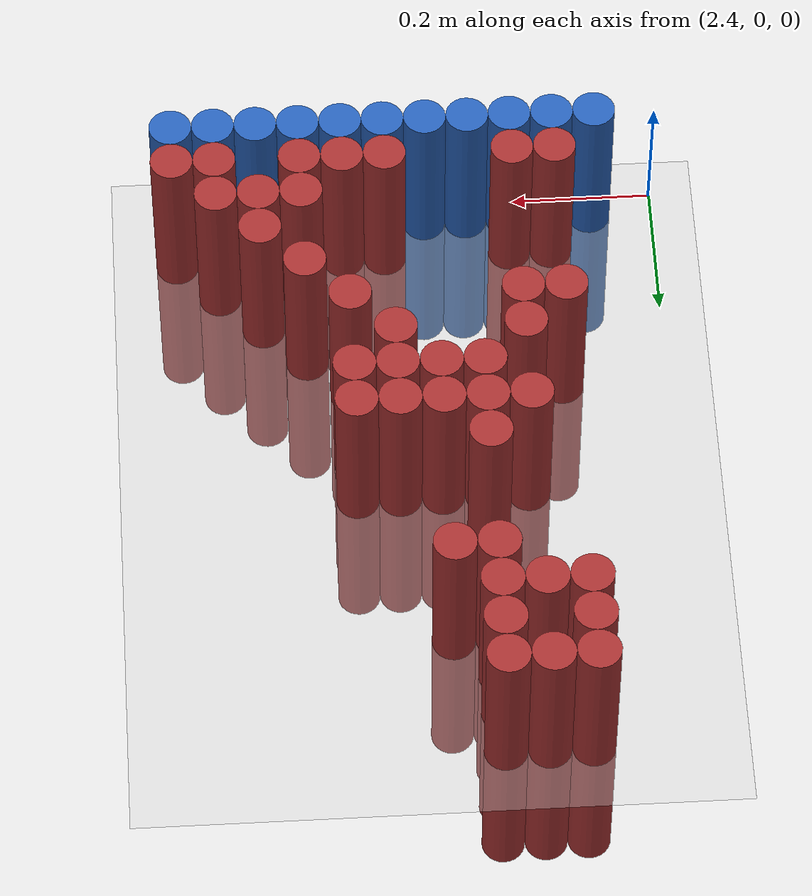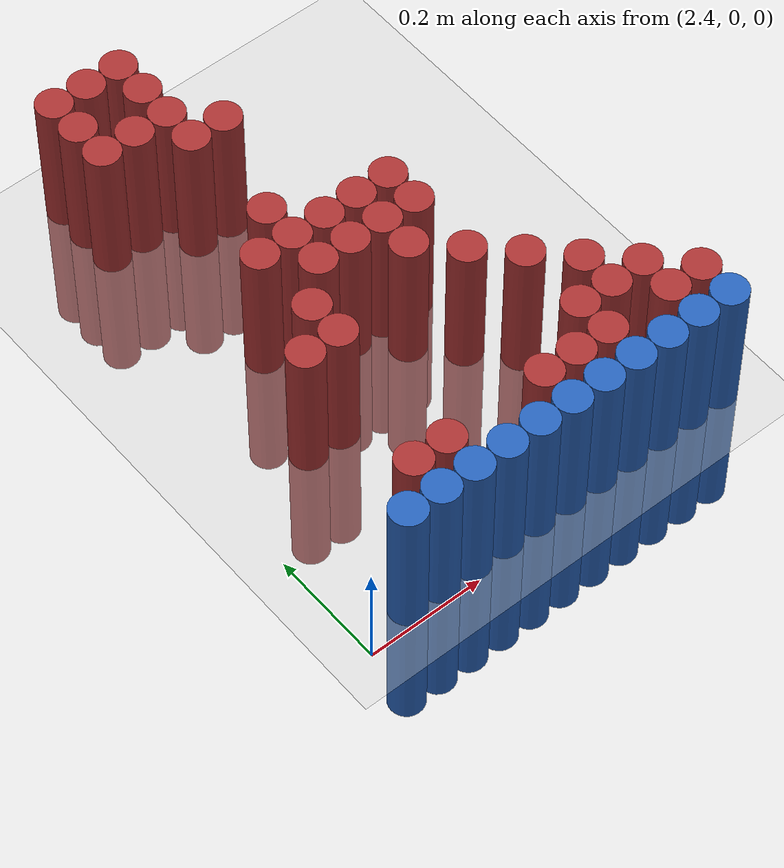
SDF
<sdf version="1.6">
 <world name="default">
  <model name="ground_plane">
   <static>1</static>
   <link name="link">
    <collision name="collision">
     <geometry><plane><normal>0 0 1</normal><size>100 100</size></plane></geometry>
     <surface><friction><ode><mu>100</mu><mu2>50</mu2></ode></friction></surface>
    </collision>
    <visual name="visual">
     <cast_shadows>0</cast_shadows>
     <geometry><plane><normal>0 0 1</normal><size>100 100</size></plane></geometry>
     <material>
      <script><uri>file://media/materials/scripts/gazebo.material</uri><name>Gazebo/Grey</name></script>
     </material>
    </visual>
   </link>
  </model>
  <model name="unit_cylinder_219">
   <static>1</static>
   <pose>2.550000 0.930000 0.000000 0.000000 0.000000 0.000000</pose>
   <link name="link">
    <inertial>
     <mass>1</mass>
     <inertia><ixx>0.145833</ixx><ixy>0</ixy><ixz>0</ixz><iyy>0.145833</iyy><iyz>0</iyz><izz>0.125</izz></inertia>
    </inertial>
    <collision name="collision">
     <geometry><cylinder><radius>0.030000</radius><length>0.5</length></cylinder></geometry>
    </collision>
    <visual name="visual">
     <geometry><cylinder><radius>0.030000</radius><length>0.5</length></cylinder></geometry>
     <material>
      <ambient>0.648000 0.192000 0.192000 1</ambient>
      <diffuse>0.648000 0.192000 0.192000 1</diffuse>
     </material>
     <material>
      <script><name>Gazebo/Grey</name><uri>file://media/materials/scripts/gazebo.material</uri></script>
     </material>
    </visual>
   </link>
  </model>
  <model name="unit_cylinder_220">
   <static>1</static>
   <pose>2.610000 0.930000 0.000000 0.000000 0.000000 0.000000</pose>
   <link name="link">
    <inertial>
     <mass>1</mass>
     <inertia><ixx>0.145833</ixx><ixy>0</ixy><ixz>0</ixz><iyy>0.145833</iyy><iyz>0</iyz><izz>0.125</izz></inertia>
    </inertial>
    <collision name="collision">
     <geometry><cylinder><radius>0.030000</radius><length>0.5</length></cylinder></geometry>
    </collision>
    <visual name="visual">
     <geometry><cylinder><radius>0.030000</radius><length>0.5</length></cylinder></geometry>
     <material>
      <ambient>0.648000 0.192000 0.192000 1</ambient>
      <diffuse>0.648000 0.192000 0.192000 1</diffuse>
     </material>
     <material>
      <script><name>Gazebo/Grey</name><uri>file://media/materials/scripts/gazebo.material</uri></script>
     </material>
    </visual>
   </link>
  </model>
  <model name="unit_cylinder_221">
   <static>1</static>
   <pose>2.670000 0.930000 0.000000 0.000000 0.000000 0.000000</pose>
   <link name="link">
    <inertial>
     <mass>1</mass>
     <inertia><ixx>0.145833</ixx><ixy>0</ixy><ixz>0</ixz><iyy>0.145833</iyy><iyz>0</iyz><izz>0.125</izz></inertia>
    </inertial>
    <collision name="collision">
     <geometry><cylinder><radius>0.030000</radius><length>0.5</length></cylinder></geometry>
    </collision>
    <visual name="visual">
     <geometry><cylinder><radius>0.030000</radius><length>0.5</length></cylinder></geometry>
     <material>
      <ambient>0.648000 0.192000 0.192000 1</ambient>
      <diffuse>0.648000 0.192000 0.192000 1</diffuse>
     </material>
     <material>
      <script><name>Gazebo/Grey</name><uri>file://media/materials/scripts/gazebo.material</uri></script>
     </material>
    </visual>
   </link>
  </model>
  <model name="unit_cylinder_225">
   <static>1</static>
   <pose>2.550000 0.870000 0.000000 0.000000 0.000000 0.000000</pose>
   <link name="link">
    <inertial>
     <mass>1</mass>
     <inertia><ixx>0.145833</ixx><ixy>0</ixy><ixz>0</ixz><iyy>0.145833</iyy><iyz>0</iyz><izz>0.125</izz></inertia>
    </inertial>
    <collision name="collision">
     <geometry><cylinder><radius>0.030000</radius><length>0.5</length></cylinder></geometry>
    </collision>
    <visual name="visual">
     <geometry><cylinder><radius>0.030000</radius><length>0.5</length></cylinder></geometry>
     <material>
      <ambient>0.648000 0.192000 0.192000 1</ambient>
      <diffuse>0.648000 0.192000 0.192000 1</diffuse>
     </material>
     <material>
      <script><name>Gazebo/Grey</name><uri>file://media/materials/scripts/gazebo.material</uri></script>
     </material>
    </visual>
   </link>
  </model>
  <model name="unit_cylinder_226">
   <static>1</static>
   <pose>2.670000 0.870000 0.000000 0.000000 0.000000 0.000000</pose>
   <link name="link">
    <inertial>
     <mass>1</mass>
     <inertia><ixx>0.145833</ixx><ixy>0</ixy><ixz>0</ixz><iyy>0.145833</iyy><iyz>0</iyz><izz>0.125</izz></inertia>
    </inertial>
    <collision name="collision">
     <geometry><cylinder><radius>0.030000</radius><length>0.5</length></cylinder></geometry>
    </collision>
    <visual name="visual">
     <geometry><cylinder><radius>0.030000</radius><length>0.5</length></cylinder></geometry>
     <material>
      <ambient>0.648000 0.192000 0.192000 1</ambient>
      <diffuse>0.648000 0.192000 0.192000 1</diffuse>
     </material>
     <material>
      <script><name>Gazebo/Grey</name><uri>file://media/materials/scripts/gazebo.material</uri></script>
     </material>
    </visual>
   </link>
  </model>
  <model name="unit_cylinder_231">
   <static>1</static>
   <pose>2.550000 0.810000 0.000000 0.000000 0.000000 0.000000</pose>
   <link name="link">
    <inertial>
     <mass>1</mass>
     <inertia><ixx>0.145833</ixx><ixy>0</ixy><ixz>0</ixz><iyy>0.145833</iyy><iyz>0</iyz><izz>0.125</izz></inertia>
    </inertial>
    <collision name="collision">
     <geometry><cylinder><radius>0.030000</radius><length>0.5</length></cylinder></geometry>
    </collision>
    <visual name="visual">
     <geometry><cylinder><radius>0.030000</radius><length>0.5</length></cylinder></geometry>
     <material>
      <ambient>0.648000 0.192000 0.192000 1</ambient>
      <diffuse>0.648000 0.192000 0.192000 1</diffuse>
     </material>
     <material>
      <script><name>Gazebo/Grey</name><uri>file://media/materials/scripts/gazebo.material</uri></script>
     </material>
    </visual>
   </link>
  </model>
  <model name="unit_cylinder_232">
   <static>1</static>
   <pose>2.610000 0.810000 0.000000 0.000000 0.000000 0.000000</pose>
   <link name="link">
    <inertial>
     <mass>1</mass>
     <inertia><ixx>0.145833</ixx><ixy>0</ixy><ixz>0</ixz><iyy>0.145833</iyy><iyz>0</iyz><izz>0.125</izz></inertia>
    </inertial>
    <collision name="collision">
     <geometry><cylinder><radius>0.030000</radius><length>0.5</length></cylinder></geometry>
    </collision>
    <visual name="visual">
     <geometry><cylinder><radius>0.030000</radius><length>0.5</length></cylinder></geometry>
     <material>
      <ambient>0.648000 0.192000 0.192000 1</ambient>
      <diffuse>0.648000 0.192000 0.192000 1</diffuse>
     </material>
     <material>
      <script><name>Gazebo/Grey</name><uri>file://media/materials/scripts/gazebo.material</uri></script>
     </material>
    </visual>
   </link>
  </model>
  <model name="unit_cylinder_233">
   <static>1</static>
   <pose>2.670000 0.810000 0.000000 0.000000 0.000000 0.000000</pose>
   <link name="link">
    <inertial>
     <mass>1</mass>
     <inertia><ixx>0.145833</ixx><ixy>0</ixy><ixz>0</ixz><iyy>0.145833</iyy><iyz>0</iyz><izz>0.125</izz></inertia>
    </inertial>
    <collision name="collision">
     <geometry><cylinder><radius>0.030000</radius><length>0.5</length></cylinder></geometry>
    </collision>
    <visual name="visual">
     <geometry><cylinder><radius>0.030000</radius><length>0.5</length></cylinder></geometry>
     <material>
      <ambient>0.648000 0.192000 0.192000 1</ambient>
      <diffuse>0.648000 0.192000 0.192000 1</diffuse>
     </material>
     <material>
      <script><name>Gazebo/Grey</name><uri>file://media/materials/scripts/gazebo.material</uri></script>
     </material>
    </visual>
   </link>
  </model>
  <model name="unit_cylinder_240">
   <static>1</static>
   <pose>2.670000 0.750000 0.000000 0.000000 0.000000 0.000000</pose>
   <link name="link">
    <inertial>
     <mass>1</mass>
     <inertia><ixx>0.145833</ixx><ixy>0</ixy><ixz>0</ixz><iyy>0.145833</iyy><iyz>0</iyz><izz>0.125</izz></inertia>
    </inertial>
    <collision name="collision">
     <geometry><cylinder><radius>0.030000</radius><length>0.5</length></cylinder></geometry>
    </collision>
    <visual name="visual">
     <geometry><cylinder><radius>0.030000</radius><length>0.5</length></cylinder></geometry>
     <material>
      <ambient>0.648000 0.192000 0.192000 1</ambient>
      <diffuse>0.648000 0.192000 0.192000 1</diffuse>
     </material>
     <material>
      <script><name>Gazebo/Grey</name><uri>file://media/materials/scripts/gazebo.material</uri></script>
     </material>
    </visual>
   </link>
  </model>
  <model name="unit_cylinder_241">
   <static>1</static>
   <pose>2.730000 0.750000 0.000000 0.000000 0.000000 0.000000</pose>
   <link name="link">
    <inertial>
     <mass>1</mass>
     <inertia><ixx>0.145833</ixx><ixy>0</ixy><ixz>0</ixz><iyy>0.145833</iyy><iyz>0</iyz><izz>0.125</izz></inertia>
    </inertial>
    <collision name="collision">
     <geometry><cylinder><radius>0.030000</radius><length>0.5</length></cylinder></geometry>
    </collision>
    <visual name="visual">
     <geometry><cylinder><radius>0.030000</radius><length>0.5</length></cylinder></geometry>
     <material>
      <ambient>0.648000 0.192000 0.192000 1</ambient>
      <diffuse>0.648000 0.192000 0.192000 1</diffuse>
     </material>
     <material>
      <script><name>Gazebo/Grey</name><uri>file://media/materials/scripts/gazebo.material</uri></script>
     </material>
    </visual>
   </link>
  </model>
  <model name="unit_cylinder_260">
   <static>1</static>
   <pose>2.670000 0.570000 0.000000 0.000000 0.000000 0.000000</pose>
   <link name="link">
    <inertial>
     <mass>1</mass>
     <inertia><ixx>0.145833</ixx><ixy>0</ixy><ixz>0</ixz><iyy>0.145833</iyy><iyz>0</iyz><izz>0.125</izz></inertia>
    </inertial>
    <collision name="collision">
     <geometry><cylinder><radius>0.030000</radius><length>0.5</length></cylinder></geometry>
    </collision>
    <visual name="visual">
     <geometry><cylinder><radius>0.030000</radius><length>0.5</length></cylinder></geometry>
     <material>
      <ambient>0.648000 0.192000 0.192000 1</ambient>
      <diffuse>0.648000 0.192000 0.192000 1</diffuse>
     </material>
     <material>
      <script><name>Gazebo/Grey</name><uri>file://media/materials/scripts/gazebo.material</uri></script>
     </material>
    </visual>
   </link>
  </model>
  <model name="unit_cylinder_263">
   <static>1</static>
   <pose>2.610000 0.510000 0.000000 0.000000 0.000000 0.000000</pose>
   <link name="link">
    <inertial>
     <mass>1</mass>
     <inertia><ixx>0.145833</ixx><ixy>0</ixy><ixz>0</ixz><iyy>0.145833</iyy><iyz>0</iyz><izz>0.125</izz></inertia>
    </inertial>
    <collision name="collision">
     <geometry><cylinder><radius>0.030000</radius><length>0.5</length></cylinder></geometry>
    </collision>
    <visual name="visual">
     <geometry><cylinder><radius>0.030000</radius><length>0.5</length></cylinder></geometry>
     <material>
      <ambient>0.648000 0.192000 0.192000 1</ambient>
      <diffuse>0.648000 0.192000 0.192000 1</diffuse>
     </material>
     <material>
      <script><name>Gazebo/Grey</name><uri>file://media/materials/scripts/gazebo.material</uri></script>
     </material>
    </visual>
   </link>
  </model>
  <model name="unit_cylinder_264">
   <static>1</static>
   <pose>2.670000 0.510000 0.000000 0.000000 0.000000 0.000000</pose>
   <link name="link">
    <inertial>
     <mass>1</mass>
     <inertia><ixx>0.145833</ixx><ixy>0</ixy><ixz>0</ixz><iyy>0.145833</iyy><iyz>0</iyz><izz>0.125</izz></inertia>
    </inertial>
    <collision name="collision">
     <geometry><cylinder><radius>0.030000</radius><length>0.5</length></cylinder></geometry>
    </collision>
    <visual name="visual">
     <geometry><cylinder><radius>0.030000</radius><length>0.5</length></cylinder></geometry>
     <material>
      <ambient>0.648000 0.192000 0.192000 1</ambient>
      <diffuse>0.648000 0.192000 0.192000 1</diffuse>
     </material>
     <material>
      <script><name>Gazebo/Grey</name><uri>file://media/materials/scripts/gazebo.material</uri></script>
     </material>
    </visual>
   </link>
  </model>
  <model name="unit_cylinder_265">
   <static>1</static>
   <pose>2.730000 0.510000 0.000000 0.000000 0.000000 0.000000</pose>
   <link name="link">
    <inertial>
     <mass>1</mass>
     <inertia><ixx>0.145833</ixx><ixy>0</ixy><ixz>0</ixz><iyy>0.145833</iyy><iyz>0</iyz><izz>0.125</izz></inertia>
    </inertial>
    <collision name="collision">
     <geometry><cylinder><radius>0.030000</radius><length>0.5</length></cylinder></geometry>
    </collision>
    <visual name="visual">
     <geometry><cylinder><radius>0.030000</radius><length>0.5</length></cylinder></geometry>
     <material>
      <ambient>0.648000 0.192000 0.192000 1</ambient>
      <diffuse>0.648000 0.192000 0.192000 1</diffuse>
     </material>
     <material>
      <script><name>Gazebo/Grey</name><uri>file://media/materials/scripts/gazebo.material</uri></script>
     </material>
    </visual>
   </link>
  </model>
  <model name="unit_cylinder_266">
   <static>1</static>
   <pose>2.790000 0.510000 0.000000 0.000000 0.000000 0.000000</pose>
   <link name="link">
    <inertial>
     <mass>1</mass>
     <inertia><ixx>0.145833</ixx><ixy>0</ixy><ixz>0</ixz><iyy>0.145833</iyy><iyz>0</iyz><izz>0.125</izz></inertia>
    </inertial>
    <collision name="collision">
     <geometry><cylinder><radius>0.030000</radius><length>0.5</length></cylinder></geometry>
    </collision>
    <visual name="visual">
     <geometry><cylinder><radius>0.030000</radius><length>0.5</length></cylinder></geometry>
     <material>
      <ambient>0.648000 0.192000 0.192000 1</ambient>
      <diffuse>0.648000 0.192000 0.192000 1</diffuse>
     </material>
     <material>
      <script><name>Gazebo/Grey</name><uri>file://media/materials/scripts/gazebo.material</uri></script>
     </material>
    </visual>
   </link>
  </model>
  <model name="unit_cylinder_267">
   <static>1</static>
   <pose>2.850000 0.510000 0.000000 0.000000 0.000000 0.000000</pose>
   <link name="link">
    <inertial>
     <mass>1</mass>
     <inertia><ixx>0.145833</ixx><ixy>0</ixy><ixz>0</ixz><iyy>0.145833</iyy><iyz>0</iyz><izz>0.125</izz></inertia>
    </inertial>
    <collision name="collision">
     <geometry><cylinder><radius>0.030000</radius><length>0.5</length></cylinder></geometry>
    </collision>
    <visual name="visual">
     <geometry><cylinder><radius>0.030000</radius><length>0.5</length></cylinder></geometry>
     <material>
      <ambient>0.648000 0.192000 0.192000 1</ambient>
      <diffuse>0.648000 0.192000 0.192000 1</diffuse>
     </material>
     <material>
      <script><name>Gazebo/Grey</name><uri>file://media/materials/scripts/gazebo.material</uri></script>
     </material>
    </visual>
   </link>
  </model>
  <model name="unit_cylinder_268">
   <static>1</static>
   <pose>2.670000 0.450000 0.000000 0.000000 0.000000 0.000000</pose>
   <link name="link">
    <inertial>
     <mass>1</mass>
     <inertia><ixx>0.145833</ixx><ixy>0</ixy><ixz>0</ixz><iyy>0.145833</iyy><iyz>0</iyz><izz>0.125</izz></inertia>
    </inertial>
    <collision name="collision">
     <geometry><cylinder><radius>0.030000</radius><length>0.5</length></cylinder></geometry>
    </collision>
    <visual name="visual">
     <geometry><cylinder><radius>0.030000</radius><length>0.5</length></cylinder></geometry>
     <material>
      <ambient>0.648000 0.192000 0.192000 1</ambient>
      <diffuse>0.648000 0.192000 0.192000 1</diffuse>
     </material>
     <material>
      <script><name>Gazebo/Grey</name><uri>file://media/materials/scripts/gazebo.material</uri></script>
     </material>
    </visual>
   </link>
  </model>
  <model name="unit_cylinder_269">
   <static>1</static>
   <pose>2.730000 0.450000 0.000000 0.000000 0.000000 0.000000</pose>
   <link name="link">
    <inertial>
     <mass>1</mass>
     <inertia><ixx>0.145833</ixx><ixy>0</ixy><ixz>0</ixz><iyy>0.145833</iyy><iyz>0</iyz><izz>0.125</izz></inertia>
    </inertial>
    <collision name="collision">
     <geometry><cylinder><radius>0.030000</radius><length>0.5</length></cylinder></geometry>
    </collision>
    <visual name="visual">
     <geometry><cylinder><radius>0.030000</radius><length>0.5</length></cylinder></geometry>
     <material>
      <ambient>0.648000 0.192000 0.192000 1</ambient>
      <diffuse>0.648000 0.192000 0.192000 1</diffuse>
     </material>
     <material>
      <script><name>Gazebo/Grey</name><uri>file://media/materials/scripts/gazebo.material</uri></script>
     </material>
    </visual>
   </link>
  </model>
  <model name="unit_cylinder_270">
   <static>1</static>
   <pose>2.790000 0.450000 0.000000 0.000000 0.000000 0.000000</pose>
   <link name="link">
    <inertial>
     <mass>1</mass>
     <inertia><ixx>0.145833</ixx><ixy>0</ixy><ixz>0</ixz><iyy>0.145833</iyy><iyz>0</iyz><izz>0.125</izz></inertia>
    </inertial>
    <collision name="collision">
     <geometry><cylinder><radius>0.030000</radius><length>0.5</length></cylinder></geometry>
    </collision>
    <visual name="visual">
     <geometry><cylinder><radius>0.030000</radius><length>0.5</length></cylinder></geometry>
     <material>
      <ambient>0.648000 0.192000 0.192000 1</ambient>
      <diffuse>0.648000 0.192000 0.192000 1</diffuse>
     </material>
     <material>
      <script><name>Gazebo/Grey</name><uri>file://media/materials/scripts/gazebo.material</uri></script>
     </material>
    </visual>
   </link>
  </model>
  <model name="unit_cylinder_271">
   <static>1</static>
   <pose>2.850000 0.450000 0.000000 0.000000 0.000000 0.000000</pose>
   <link name="link">
    <inertial>
     <mass>1</mass>
     <inertia><ixx>0.145833</ixx><ixy>0</ixy><ixz>0</ixz><iyy>0.145833</iyy><iyz>0</iyz><izz>0.125</izz></inertia>
    </inertial>
    <collision name="collision">
     <geometry><cylinder><radius>0.030000</radius><length>0.5</length></cylinder></geometry>
    </collision>
    <visual name="visual">
     <geometry><cylinder><radius>0.030000</radius><length>0.5</length></cylinder></geometry>
     <material>
      <ambient>0.648000 0.192000 0.192000 1</ambient>
      <diffuse>0.648000 0.192000 0.192000 1</diffuse>
     </material>
     <material>
      <script><name>Gazebo/Grey</name><uri>file://media/materials/scripts/gazebo.material</uri></script>
     </material>
    </visual>
   </link>
  </model>
  <model name="unit_cylinder_272">
   <static>1</static>
   <pose>2.610000 0.390000 0.000000 0.000000 0.000000 0.000000</pose>
   <link name="link">
    <inertial>
     <mass>1</mass>
     <inertia><ixx>0.145833</ixx><ixy>0</ixy><ixz>0</ixz><iyy>0.145833</iyy><iyz>0</iyz><izz>0.125</izz></inertia>
    </inertial>
    <collision name="collision">
     <geometry><cylinder><radius>0.030000</radius><length>0.5</length></cylinder></geometry>
    </collision>
    <visual name="visual">
     <geometry><cylinder><radius>0.030000</radius><length>0.5</length></cylinder></geometry>
     <material>
      <ambient>0.648000 0.192000 0.192000 1</ambient>
      <diffuse>0.648000 0.192000 0.192000 1</diffuse>
     </material>
     <material>
      <script><name>Gazebo/Grey</name><uri>file://media/materials/scripts/gazebo.material</uri></script>
     </material>
    </visual>
   </link>
  </model>
  <model name="unit_cylinder_273">
   <static>1</static>
   <pose>2.790000 0.390000 0.000000 0.000000 0.000000 0.000000</pose>
   <link name="link">
    <inertial>
     <mass>1</mass>
     <inertia><ixx>0.145833</ixx><ixy>0</ixy><ixz>0</ixz><iyy>0.145833</iyy><iyz>0</iyz><izz>0.125</izz></inertia>
    </inertial>
    <collision name="collision">
     <geometry><cylinder><radius>0.030000</radius><length>0.5</length></cylinder></geometry>
    </collision>
    <visual name="visual">
     <geometry><cylinder><radius>0.030000</radius><length>0.5</length></cylinder></geometry>
     <material>
      <ambient>0.648000 0.192000 0.192000 1</ambient>
      <diffuse>0.648000 0.192000 0.192000 1</diffuse>
     </material>
     <material>
      <script><name>Gazebo/Grey</name><uri>file://media/materials/scripts/gazebo.material</uri></script>
     </material>
    </visual>
   </link>
  </model>
  <model name="unit_cylinder_274">
   <static>1</static>
   <pose>2.550000 0.330000 0.000000 0.000000 0.000000 0.000000</pose>
   <link name="link">
    <inertial>
     <mass>1</mass>
     <inertia><ixx>0.145833</ixx><ixy>0</ixy><ixz>0</ixz><iyy>0.145833</iyy><iyz>0</iyz><izz>0.125</izz></inertia>
    </inertial>
    <collision name="collision">
     <geometry><cylinder><radius>0.030000</radius><length>0.5</length></cylinder></geometry>
    </collision>
    <visual name="visual">
     <geometry><cylinder><radius>0.030000</radius><length>0.5</length></cylinder></geometry>
     <material>
      <ambient>0.648000 0.192000 0.192000 1</ambient>
      <diffuse>0.648000 0.192000 0.192000 1</diffuse>
     </material>
     <material>
      <script><name>Gazebo/Grey</name><uri>file://media/materials/scripts/gazebo.material</uri></script>
     </material>
    </visual>
   </link>
  </model>
  <model name="unit_cylinder_275">
   <static>1</static>
   <pose>2.610000 0.330000 0.000000 0.000000 0.000000 0.000000</pose>
   <link name="link">
    <inertial>
     <mass>1</mass>
     <inertia><ixx>0.145833</ixx><ixy>0</ixy><ixz>0</ixz><iyy>0.145833</iyy><iyz>0</iyz><izz>0.125</izz></inertia>
    </inertial>
    <collision name="collision">
     <geometry><cylinder><radius>0.030000</radius><length>0.5</length></cylinder></geometry>
    </collision>
    <visual name="visual">
     <geometry><cylinder><radius>0.030000</radius><length>0.5</length></cylinder></geometry>
     <material>
      <ambient>0.648000 0.192000 0.192000 1</ambient>
      <diffuse>0.648000 0.192000 0.192000 1</diffuse>
     </material>
     <material>
      <script><name>Gazebo/Grey</name><uri>file://media/materials/scripts/gazebo.material</uri></script>
     </material>
    </visual>
   </link>
  </model>
  <model name="unit_cylinder_276">
   <static>1</static>
   <pose>2.850000 0.330000 0.000000 0.000000 0.000000 0.000000</pose>
   <link name="link">
    <inertial>
     <mass>1</mass>
     <inertia><ixx>0.145833</ixx><ixy>0</ixy><ixz>0</ixz><iyy>0.145833</iyy><iyz>0</iyz><izz>0.125</izz></inertia>
    </inertial>
    <collision name="collision">
     <geometry><cylinder><radius>0.030000</radius><length>0.5</length></cylinder></geometry>
    </collision>
    <visual name="visual">
     <geometry><cylinder><radius>0.030000</radius><length>0.5</length></cylinder></geometry>
     <material>
      <ambient>0.648000 0.192000 0.192000 1</ambient>
      <diffuse>0.648000 0.192000 0.192000 1</diffuse>
     </material>
     <material>
      <script><name>Gazebo/Grey</name><uri>file://media/materials/scripts/gazebo.material</uri></script>
     </material>
    </visual>
   </link>
  </model>
  <model name="unit_cylinder_277">
   <static>1</static>
   <pose>2.910000 0.270000 0.000000 0.000000 0.000000 0.000000</pose>
   <link name="link">
    <inertial>
     <mass>1</mass>
     <inertia><ixx>0.145833</ixx><ixy>0</ixy><ixz>0</ixz><iyy>0.145833</iyy><iyz>0</iyz><izz>0.125</izz></inertia>
    </inertial>
    <collision name="collision">
     <geometry><cylinder><radius>0.030000</radius><length>0.5</length></cylinder></geometry>
    </collision>
    <visual name="visual">
     <geometry><cylinder><radius>0.030000</radius><length>0.5</length></cylinder></geometry>
     <material>
      <ambient>0.648000 0.192000 0.192000 1</ambient>
      <diffuse>0.648000 0.192000 0.192000 1</diffuse>
     </material>
     <material>
      <script><name>Gazebo/Grey</name><uri>file://media/materials/scripts/gazebo.material</uri></script>
     </material>
    </visual>
   </link>
  </model>
  <model name="unit_cylinder_279">
   <static>1</static>
   <pose>2.970000 0.210000 0.000000 0.000000 0.000000 0.000000</pose>
   <link name="link">
    <inertial>
     <mass>1</mass>
     <inertia><ixx>0.145833</ixx><ixy>0</ixy><ixz>0</ixz><iyy>0.145833</iyy><iyz>0</iyz><izz>0.125</izz></inertia>
    </inertial>
    <collision name="collision">
     <geometry><cylinder><radius>0.030000</radius><length>0.5</length></cylinder></geometry>
    </collision>
    <visual name="visual">
     <geometry><cylinder><radius>0.030000</radius><length>0.5</length></cylinder></geometry>
     <material>
      <ambient>0.648000 0.192000 0.192000 1</ambient>
      <diffuse>0.648000 0.192000 0.192000 1</diffuse>
     </material>
     <material>
      <script><name>Gazebo/Grey</name><uri>file://media/materials/scripts/gazebo.material</uri></script>
     </material>
    </visual>
   </link>
  </model>
  <model name="unit_cylinder_284">
   <static>1</static>
   <pose>2.910000 0.150000 0.000000 0.000000 0.000000 0.000000</pose>
   <link name="link">
    <inertial>
     <mass>1</mass>
     <inertia><ixx>0.145833</ixx><ixy>0</ixy><ixz>0</ixz><iyy>0.145833</iyy><iyz>0</iyz><izz>0.125</izz></inertia>
    </inertial>
    <collision name="collision">
     <geometry><cylinder><radius>0.030000</radius><length>0.5</length></cylinder></geometry>
    </collision>
    <visual name="visual">
     <geometry><cylinder><radius>0.030000</radius><length>0.5</length></cylinder></geometry>
     <material>
      <ambient>0.648000 0.192000 0.192000 1</ambient>
      <diffuse>0.648000 0.192000 0.192000 1</diffuse>
     </material>
     <material>
      <script><name>Gazebo/Grey</name><uri>file://media/materials/scripts/gazebo.material</uri></script>
     </material>
    </visual>
   </link>
  </model>
  <model name="unit_cylinder_285">
   <static>1</static>
   <pose>2.970000 0.150000 0.000000 0.000000 0.000000 0.000000</pose>
   <link name="link">
    <inertial>
     <mass>1</mass>
     <inertia><ixx>0.145833</ixx><ixy>0</ixy><ixz>0</ixz><iyy>0.145833</iyy><iyz>0</iyz><izz>0.125</izz></inertia>
    </inertial>
    <collision name="collision">
     <geometry><cylinder><radius>0.030000</radius><length>0.5</length></cylinder></geometry>
    </collision>
    <visual name="visual">
     <geometry><cylinder><radius>0.030000</radius><length>0.5</length></cylinder></geometry>
     <material>
      <ambient>0.648000 0.192000 0.192000 1</ambient>
      <diffuse>0.648000 0.192000 0.192000 1</diffuse>
     </material>
     <material>
      <script><name>Gazebo/Grey</name><uri>file://media/materials/scripts/gazebo.material</uri></script>
     </material>
    </visual>
   </link>
  </model>
  <model name="unit_cylinder_286">
   <static>1</static>
   <pose>3.030000 0.150000 0.000000 0.000000 0.000000 0.000000</pose>
   <link name="link">
    <inertial>
     <mass>1</mass>
     <inertia><ixx>0.145833</ixx><ixy>0</ixy><ixz>0</ixz><iyy>0.145833</iyy><iyz>0</iyz><izz>0.125</izz></inertia>
    </inertial>
    <collision name="collision">
     <geometry><cylinder><radius>0.030000</radius><length>0.5</length></cylinder></geometry>
    </collision>
    <visual name="visual">
     <geometry><cylinder><radius>0.030000</radius><length>0.5</length></cylinder></geometry>
     <material>
      <ambient>0.648000 0.192000 0.192000 1</ambient>
      <diffuse>0.648000 0.192000 0.192000 1</diffuse>
     </material>
     <material>
      <script><name>Gazebo/Grey</name><uri>file://media/materials/scripts/gazebo.material</uri></script>
     </material>
    </visual>
   </link>
  </model>
  <model name="unit_cylinder_295">
   <static>1</static>
   <pose>2.550000 0.090000 0.000000 0.000000 0.000000 0.000000</pose>
   <link name="link">
    <inertial>
     <mass>1</mass>
     <inertia><ixx>0.145833</ixx><ixy>0</ixy><ixz>0</ixz><iyy>0.145833</iyy><iyz>0</iyz><izz>0.125</izz></inertia>
    </inertial>
    <collision name="collision">
     <geometry><cylinder><radius>0.030000</radius><length>0.5</length></cylinder></geometry>
    </collision>
    <visual name="visual">
     <geometry><cylinder><radius>0.030000</radius><length>0.5</length></cylinder></geometry>
     <material>
      <ambient>0.648000 0.192000 0.192000 1</ambient>
      <diffuse>0.648000 0.192000 0.192000 1</diffuse>
     </material>
     <material>
      <script><name>Gazebo/Grey</name><uri>file://media/materials/scripts/gazebo.material</uri></script>
     </material>
    </visual>
   </link>
  </model>
  <model name="unit_cylinder_296">
   <static>1</static>
   <pose>2.610000 0.090000 0.000000 0.000000 0.000000 0.000000</pose>
   <link name="link">
    <inertial>
     <mass>1</mass>
     <inertia><ixx>0.145833</ixx><ixy>0</ixy><ixz>0</ixz><iyy>0.145833</iyy><iyz>0</iyz><izz>0.125</izz></inertia>
    </inertial>
    <collision name="collision">
     <geometry><cylinder><radius>0.030000</radius><length>0.5</length></cylinder></geometry>
    </collision>
    <visual name="visual">
     <geometry><cylinder><radius>0.030000</radius><length>0.5</length></cylinder></geometry>
     <material>
      <ambient>0.648000 0.192000 0.192000 1</ambient>
      <diffuse>0.648000 0.192000 0.192000 1</diffuse>
     </material>
     <material>
      <script><name>Gazebo/Grey</name><uri>file://media/materials/scripts/gazebo.material</uri></script>
     </material>
    </visual>
   </link>
  </model>
  <model name="unit_cylinder_297">
   <static>1</static>
   <pose>2.790000 0.090000 0.000000 0.000000 0.000000 0.000000</pose>
   <link name="link">
    <inertial>
     <mass>1</mass>
     <inertia><ixx>0.145833</ixx><ixy>0</ixy><ixz>0</ixz><iyy>0.145833</iyy><iyz>0</iyz><izz>0.125</izz></inertia>
    </inertial>
    <collision name="collision">
     <geometry><cylinder><radius>0.030000</radius><length>0.5</length></cylinder></geometry>
    </collision>
    <visual name="visual">
     <geometry><cylinder><radius>0.030000</radius><length>0.5</length></cylinder></geometry>
     <material>
      <ambient>0.648000 0.192000 0.192000 1</ambient>
      <diffuse>0.648000 0.192000 0.192000 1</diffuse>
     </material>
     <material>
      <script><name>Gazebo/Grey</name><uri>file://media/materials/scripts/gazebo.material</uri></script>
     </material>
    </visual>
   </link>
  </model>
  <model name="unit_cylinder_298">
   <static>1</static>
   <pose>2.850000 0.090000 0.000000 0.000000 0.000000 0.000000</pose>
   <link name="link">
    <inertial>
     <mass>1</mass>
     <inertia><ixx>0.145833</ixx><ixy>0</ixy><ixz>0</ixz><iyy>0.145833</iyy><iyz>0</iyz><izz>0.125</izz></inertia>
    </inertial>
    <collision name="collision">
     <geometry><cylinder><radius>0.030000</radius><length>0.5</length></cylinder></geometry>
    </collision>
    <visual name="visual">
     <geometry><cylinder><radius>0.030000</radius><length>0.5</length></cylinder></geometry>
     <material>
      <ambient>0.648000 0.192000 0.192000 1</ambient>
      <diffuse>0.648000 0.192000 0.192000 1</diffuse>
     </material>
     <material>
      <script><name>Gazebo/Grey</name><uri>file://media/materials/scripts/gazebo.material</uri></script>
     </material>
    </visual>
   </link>
  </model>
  <model name="unit_cylinder_299">
   <static>1</static>
   <pose>2.910000 0.090000 0.000000 0.000000 0.000000 0.000000</pose>
   <link name="link">
    <inertial>
     <mass>1</mass>
     <inertia><ixx>0.145833</ixx><ixy>0</ixy><ixz>0</ixz><iyy>0.145833</iyy><iyz>0</iyz><izz>0.125</izz></inertia>
    </inertial>
    <collision name="collision">
     <geometry><cylinder><radius>0.030000</radius><length>0.5</length></cylinder></geometry>
    </collision>
    <visual name="visual">
     <geometry><cylinder><radius>0.030000</radius><length>0.5</length></cylinder></geometry>
     <material>
      <ambient>0.648000 0.192000 0.192000 1</ambient>
      <diffuse>0.648000 0.192000 0.192000 1</diffuse>
     </material>
     <material>
      <script><name>Gazebo/Grey</name><uri>file://media/materials/scripts/gazebo.material</uri></script>
     </material>
    </visual>
   </link>
  </model>
  <model name="unit_cylinder_300">
   <static>1</static>
   <pose>3.030000 0.090000 0.000000 0.000000 0.000000 0.000000</pose>
   <link name="link">
    <inertial>
     <mass>1</mass>
     <inertia><ixx>0.145833</ixx><ixy>0</ixy><ixz>0</ixz><iyy>0.145833</iyy><iyz>0</iyz><izz>0.125</izz></inertia>
    </inertial>
    <collision name="collision">
     <geometry><cylinder><radius>0.030000</radius><length>0.5</length></cylinder></geometry>
    </collision>
    <visual name="visual">
     <geometry><cylinder><radius>0.030000</radius><length>0.5</length></cylinder></geometry>
     <material>
      <ambient>0.648000 0.192000 0.192000 1</ambient>
      <diffuse>0.648000 0.192000 0.192000 1</diffuse>
     </material>
     <material>
      <script><name>Gazebo/Grey</name><uri>file://media/materials/scripts/gazebo.material</uri></script>
     </material>
    </visual>
   </link>
  </model>
  <model name="unit_cylinder_301">
   <static>1</static>
   <pose>3.090000 0.090000 0.000000 0.000000 0.000000 0.000000</pose>
   <link name="link">
    <inertial>
     <mass>1</mass>
     <inertia><ixx>0.145833</ixx><ixy>0</ixy><ixz>0</ixz><iyy>0.145833</iyy><iyz>0</iyz><izz>0.125</izz></inertia>
    </inertial>
    <collision name="collision">
     <geometry><cylinder><radius>0.030000</radius><length>0.5</length></cylinder></geometry>
    </collision>
    <visual name="visual">
     <geometry><cylinder><radius>0.030000</radius><length>0.5</length></cylinder></geometry>
     <material>
      <ambient>0.648000 0.192000 0.192000 1</ambient>
      <diffuse>0.648000 0.192000 0.192000 1</diffuse>
     </material>
     <material>
      <script><name>Gazebo/Grey</name><uri>file://media/materials/scripts/gazebo.material</uri></script>
     </material>
    </visual>
   </link>
  </model>
  <model name="unit_cylinder_315">
   <static>1</static>
   <pose>2.490000 0.030000 0.000000 0.000000 0.000000 0.000000</pose>
   <link name="link">
    <inertial>
     <mass>1</mass>
     <inertia><ixx>0.145833</ixx><ixy>0</ixy><ixz>0</ixz><iyy>0.145833</iyy><iyz>0</iyz><izz>0.125</izz></inertia>
    </inertial>
    <collision name="collision">
     <geometry><cylinder><radius>0.030000</radius><length>0.5</length></cylinder></geometry>
    </collision>
    <visual name="visual">
     <geometry><cylinder><radius>0.030000</radius><length>0.5</length></cylinder></geometry>
     <material>
      <ambient>0.152000 0.379000 0.720000 1</ambient>
      <diffuse>0.152000 0.379000 0.720000 1</diffuse>
     </material>
     <material>
      <script><name>Gazebo/Grey</name><uri>file://media/materials/scripts/gazebo.material</uri></script>
     </material>
    </visual>
   </link>
  </model>
  <model name="unit_cylinder_316">
   <static>1</static>
   <pose>2.550000 0.030000 0.000000 0.000000 0.000000 0.000000</pose>
   <link name="link">
    <inertial>
     <mass>1</mass>
     <inertia><ixx>0.145833</ixx><ixy>0</ixy><ixz>0</ixz><iyy>0.145833</iyy><iyz>0</iyz><izz>0.125</izz></inertia>
    </inertial>
    <collision name="collision">
     <geometry><cylinder><radius>0.030000</radius><length>0.5</length></cylinder></geometry>
    </collision>
    <visual name="visual">
     <geometry><cylinder><radius>0.030000</radius><length>0.5</length></cylinder></geometry>
     <material>
      <ambient>0.152000 0.379000 0.720000 1</ambient>
      <diffuse>0.152000 0.379000 0.720000 1</diffuse>
     </material>
     <material>
      <script><name>Gazebo/Grey</name><uri>file://media/materials/scripts/gazebo.material</uri></script>
     </material>
    </visual>
   </link>
  </model>
  <model name="unit_cylinder_317">
   <static>1</static>
   <pose>2.610000 0.030000 0.000000 0.000000 0.000000 0.000000</pose>
   <link name="link">
    <inertial>
     <mass>1</mass>
     <inertia><ixx>0.145833</ixx><ixy>0</ixy><ixz>0</ixz><iyy>0.145833</iyy><iyz>0</iyz><izz>0.125</izz></inertia>
    </inertial>
    <collision name="collision">
     <geometry><cylinder><radius>0.030000</radius><length>0.5</length></cylinder></geometry>
    </collision>
    <visual name="visual">
     <geometry><cylinder><radius>0.030000</radius><length>0.5</length></cylinder></geometry>
     <material>
      <ambient>0.152000 0.379000 0.720000 1</ambient>
      <diffuse>0.152000 0.379000 0.720000 1</diffuse>
     </material>
     <material>
      <script><name>Gazebo/Grey</name><uri>file://media/materials/scripts/gazebo.material</uri></script>
     </material>
    </visual>
   </link>
  </model>
  <model name="unit_cylinder_318">
   <static>1</static>
   <pose>2.670000 0.030000 0.000000 0.000000 0.000000 0.000000</pose>
   <link name="link">
    <inertial>
     <mass>1</mass>
     <inertia><ixx>0.145833</ixx><ixy>0</ixy><ixz>0</ixz><iyy>0.145833</iyy><iyz>0</iyz><izz>0.125</izz></inertia>
    </inertial>
    <collision name="collision">
     <geometry><cylinder><radius>0.030000</radius><length>0.5</length></cylinder></geometry>
    </collision>
    <visual name="visual">
     <geometry><cylinder><radius>0.030000</radius><length>0.5</length></cylinder></geometry>
     <material>
      <ambient>0.152000 0.379000 0.720000 1</ambient>
      <diffuse>0.152000 0.379000 0.720000 1</diffuse>
     </material>
     <material>
      <script><name>Gazebo/Grey</name><uri>file://media/materials/scripts/gazebo.material</uri></script>
     </material>
    </visual>
   </link>
  </model>
  <model name="unit_cylinder_319">
   <static>1</static>
   <pose>2.730000 0.030000 0.000000 0.000000 0.000000 0.000000</pose>
   <link name="link">
    <inertial>
     <mass>1</mass>
     <inertia><ixx>0.145833</ixx><ixy>0</ixy><ixz>0</ixz><iyy>0.145833</iyy><iyz>0</iyz><izz>0.125</izz></inertia>
    </inertial>
    <collision name="collision">
     <geometry><cylinder><radius>0.030000</radius><length>0.5</length></cylinder></geometry>
    </collision>
    <visual name="visual">
     <geometry><cylinder><radius>0.030000</radius><length>0.5</length></cylinder></geometry>
     <material>
      <ambient>0.152000 0.379000 0.720000 1</ambient>
      <diffuse>0.152000 0.379000 0.720000 1</diffuse>
     </material>
     <material>
      <script><name>Gazebo/Grey</name><uri>file://media/materials/scripts/gazebo.material</uri></script>
     </material>
    </visual>
   </link>
  </model>
  <model name="unit_cylinder_320">
   <static>1</static>
   <pose>2.790000 0.030000 0.000000 0.000000 0.000000 0.000000</pose>
   <link name="link">
    <inertial>
     <mass>1</mass>
     <inertia><ixx>0.145833</ixx><ixy>0</ixy><ixz>0</ixz><iyy>0.145833</iyy><iyz>0</iyz><izz>0.125</izz></inertia>
    </inertial>
    <collision name="collision">
     <geometry><cylinder><radius>0.030000</radius><length>0.5</length></cylinder></geometry>
    </collision>
    <visual name="visual">
     <geometry><cylinder><radius>0.030000</radius><length>0.5</length></cylinder></geometry>
     <material>
      <ambient>0.152000 0.379000 0.720000 1</ambient>
      <diffuse>0.152000 0.379000 0.720000 1</diffuse>
     </material>
     <material>
      <script><name>Gazebo/Grey</name><uri>file://media/materials/scripts/gazebo.material</uri></script>
     </material>
    </visual>
   </link>
  </model>
  <model name="unit_cylinder_321">
   <static>1</static>
   <pose>2.850000 0.030000 0.000000 0.000000 0.000000 0.000000</pose>
   <link name="link">
    <inertial>
     <mass>1</mass>
     <inertia><ixx>0.145833</ixx><ixy>0</ixy><ixz>0</ixz><iyy>0.145833</iyy><iyz>0</iyz><izz>0.125</izz></inertia>
    </inertial>
    <collision name="collision">
     <geometry><cylinder><radius>0.030000</radius><length>0.5</length></cylinder></geometry>
    </collision>
    <visual name="visual">
     <geometry><cylinder><radius>0.030000</radius><length>0.5</length></cylinder></geometry>
     <material>
      <ambient>0.152000 0.379000 0.720000 1</ambient>
      <diffuse>0.152000 0.379000 0.720000 1</diffuse>
     </material>
     <material>
      <script><name>Gazebo/Grey</name><uri>file://media/materials/scripts/gazebo.material</uri></script>
     </material>
    </visual>
   </link>
  </model>
  <model name="unit_cylinder_322">
   <static>1</static>
   <pose>2.910000 0.030000 0.000000 0.000000 0.000000 0.000000</pose>
   <link name="link">
    <inertial>
     <mass>1</mass>
     <inertia><ixx>0.145833</ixx><ixy>0</ixy><ixz>0</ixz><iyy>0.145833</iyy><iyz>0</iyz><izz>0.125</izz></inertia>
    </inertial>
    <collision name="collision">
     <geometry><cylinder><radius>0.030000</radius><length>0.5</length></cylinder></geometry>
    </collision>
    <visual name="visual">
     <geometry><cylinder><radius>0.030000</radius><length>0.5</length></cylinder></geometry>
     <material>
      <ambient>0.152000 0.379000 0.720000 1</ambient>
      <diffuse>0.152000 0.379000 0.720000 1</diffuse>
     </material>
     <material>
      <script><name>Gazebo/Grey</name><uri>file://media/materials/scripts/gazebo.material</uri></script>
     </material>
    </visual>
   </link>
  </model>
  <model name="unit_cylinder_323">
   <static>1</static>
   <pose>2.970000 0.030000 0.000000 0.000000 0.000000 0.000000</pose>
   <link name="link">
    <inertial>
     <mass>1</mass>
     <inertia><ixx>0.145833</ixx><ixy>0</ixy><ixz>0</ixz><iyy>0.145833</iyy><iyz>0</iyz><izz>0.125</izz></inertia>
    </inertial>
    <collision name="collision">
     <geometry><cylinder><radius>0.030000</radius><length>0.5</length></cylinder></geometry>
    </collision>
    <visual name="visual">
     <geometry><cylinder><radius>0.030000</radius><length>0.5</length></cylinder></geometry>
     <material>
      <ambient>0.152000 0.379000 0.720000 1</ambient>
      <diffuse>0.152000 0.379000 0.720000 1</diffuse>
     </material>
     <material>
      <script><name>Gazebo/Grey</name><uri>file://media/materials/scripts/gazebo.material</uri></script>
     </material>
    </visual>
   </link>
  </model>
  <model name="unit_cylinder_324">
   <static>1</static>
   <pose>3.030000 0.030000 0.000000 0.000000 0.000000 0.000000</pose>
   <link name="link">
    <inertial>
     <mass>1</mass>
     <inertia><ixx>0.145833</ixx><ixy>0</ixy><ixz>0</ixz><iyy>0.145833</iyy><iyz>0</iyz><izz>0.125</izz></inertia>
    </inertial>
    <collision name="collision">
     <geometry><cylinder><radius>0.030000</radius><length>0.5</length></cylinder></geometry>
    </collision>
    <visual name="visual">
     <geometry><cylinder><radius>0.030000</radius><length>0.5</length></cylinder></geometry>
     <material>
      <ambient>0.152000 0.379000 0.720000 1</ambient>
      <diffuse>0.152000 0.379000 0.720000 1</diffuse>
     </material>
     <material>
      <script><name>Gazebo/Grey</name><uri>file://media/materials/scripts/gazebo.material</uri></script>
     </material>
    </visual>
   </link>
  </model>
  <model name="unit_cylinder_325">
   <static>1</static>
   <pose>3.090000 0.030000 0.000000 0.000000 0.000000 0.000000</pose>
   <link name="link">
    <inertial>
     <mass>1</mass>
     <inertia><ixx>0.145833</ixx><ixy>0</ixy><ixz>0</ixz><iyy>0.145833</iyy><iyz>0</iyz><izz>0.125</izz></inertia>
    </inertial>
    <collision name="collision">
     <geometry><cylinder><radius>0.030000</radius><length>0.5</length></cylinder></geometry>
    </collision>
    <visual name="visual">
     <geometry><cylinder><radius>0.030000</radius><length>0.5</length></cylinder></geometry>
     <material>
      <ambient>0.152000 0.379000 0.720000 1</ambient>
      <diffuse>0.152000 0.379000 0.720000 1</diffuse>
     </material>
     <material>
      <script><name>Gazebo/Grey</name><uri>file://media/materials/scripts/gazebo.material</uri></script>
     </material>
    </visual>
   </link>
  </model>
 </world>
</sdf>
